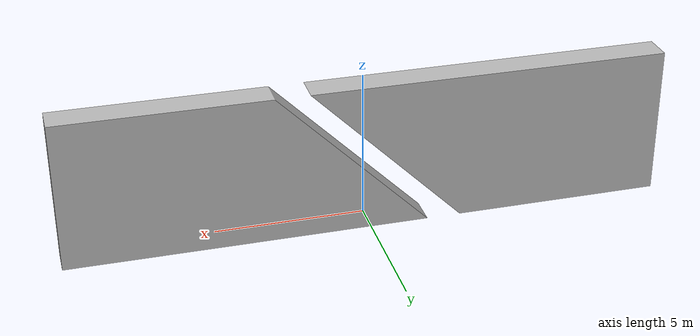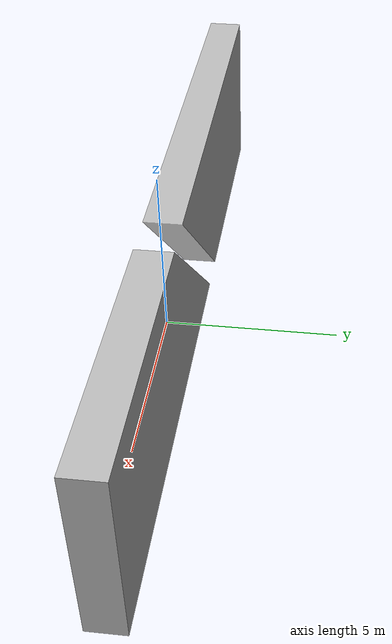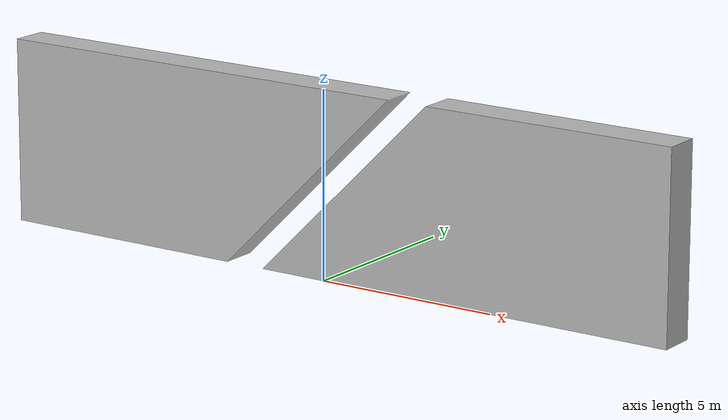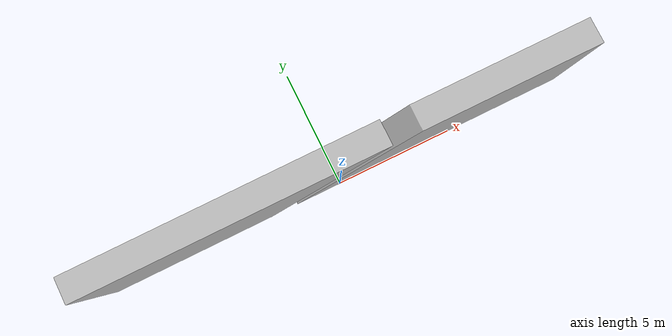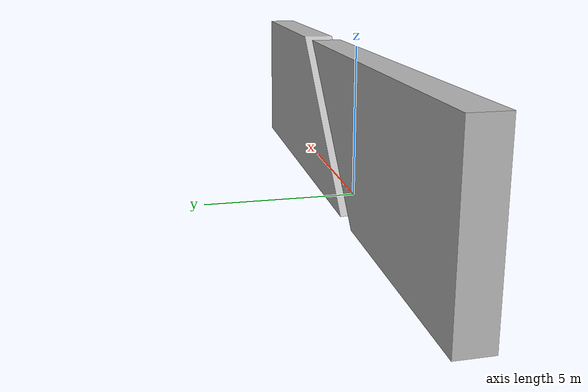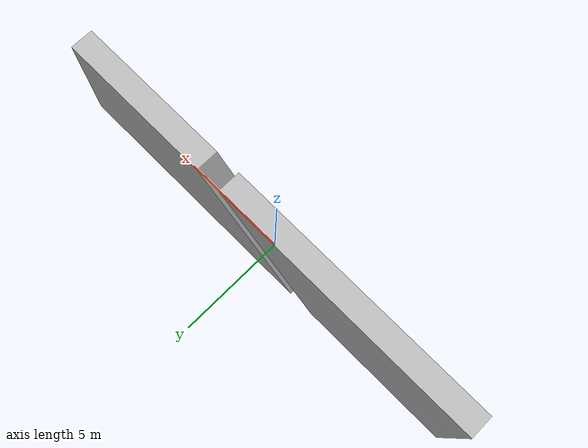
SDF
<?xml version="1.0" ?>
<sdf version="1.6">
  <model name="triangle_wall">
    <static>true</static>
    <link name="wall_link">
      <!-- Left Triangle -->
      <collision name="left_triangle_collision">
        <geometry>
          <mesh>
            <uri>model://triangle_wall/meshes/left_triangle.stl</uri>
          </mesh>
        </geometry>
      </collision>
      <visual name="left_triangle_visual">
        <geometry>
          <mesh>
            <uri>model://triangle_wall/meshes/left_triangle.obj</uri>
          </mesh>
        </geometry>
        <material>
          <script>
            <uri>model://wall_materials/materials/scripts</uri>
            <uri>model://wall_materials/materials/textures</uri>
            <name>Walls/New</name>
          </script>
        </material>
      </visual>

      <!-- Right Triangle -->
      <collision name="right_triangle_collision">
        <geometry>
          <mesh>
            <uri>model://triangle_wall/meshes/right_triangle.stl</uri>
          </mesh>
        </geometry>
      </collision>
      <visual name="right_triangle_visual">
        <geometry>
          <mesh>
            <uri>model://triangle_wall/meshes/right_triangle.obj</uri>
          </mesh>
        </geometry>
        <material>
          <script>
            <uri>model://wall_materials/materials/scripts</uri>
            <uri>model://wall_materials/materials/textures</uri>
            <name>Walls/Map3</name>
          </script>
        </material>
      </visual>
    </link>
  </model>
</sdf>
